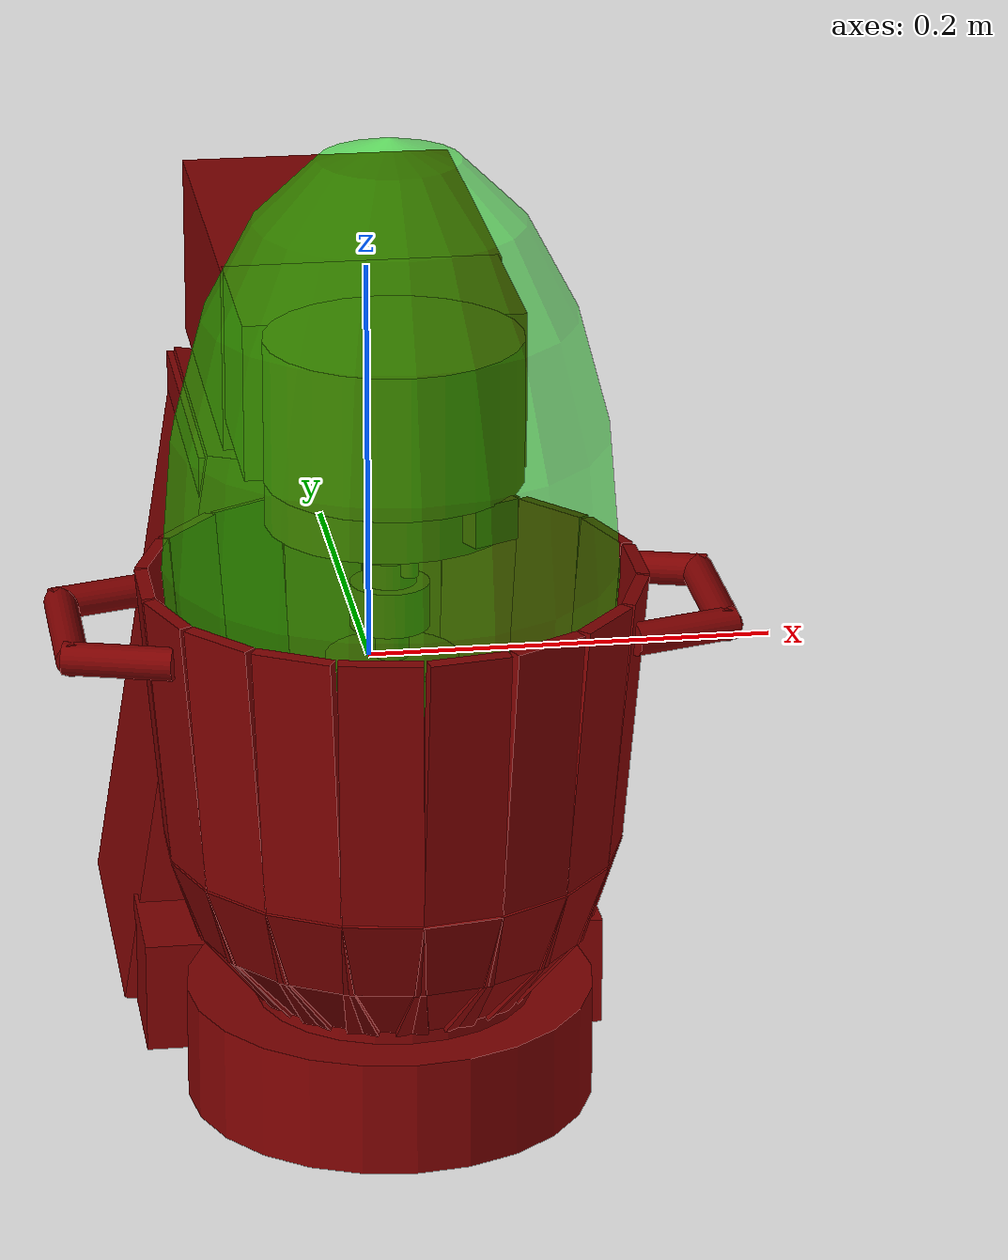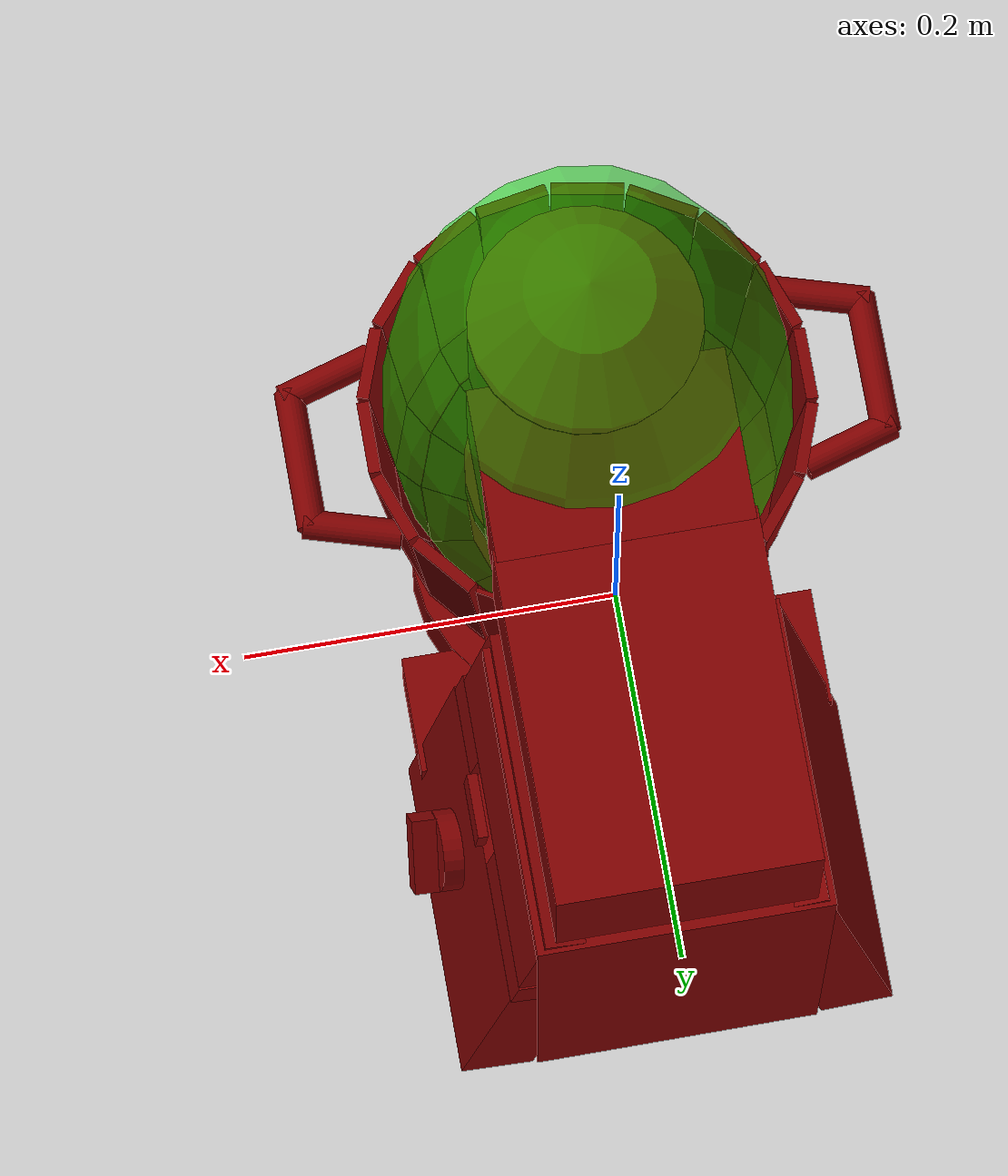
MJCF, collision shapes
<?xml version='1.0' encoding='UTF-8'?>
<mujoco model="model">
  <option timestep="0.002" gravity="0.0 0.0 -9.81"/>
  <compiler angle="radian"/>
  <asset>
    <mesh file="visuals/blender.obj" name="blender_vis"/>
    <mesh file="visuals/bowl.obj" name="bowl_vis"/>
    <mesh file="visuals/button_head_lock.obj" name="button_head_lock_vis"/>
    <mesh file="visuals/head.obj" name="head_vis"/>
    <mesh file="visuals/knob_speed.obj" name="knob_speed_vis"/>
    <mesh file="visuals/Body001.obj" name="Body001_vis"/>
    <texture file="visuals/T_BC001.png" name="Body001_material" type="2d"/>
    <material name="Body001_material" rgba="1 1 1 1.0" texture="Body001_material" shininess="0.4472135901451111" specular="0.3103448502657381"/>
    <texture file="visuals/T_BC001.png" name="bowl_material" type="2d"/>
    <material name="bowl_material" rgba="1 1 1 1.0" texture="bowl_material" shininess="1" specular="1"/>
    <texture file="visuals/T_BC001.png" name="button_head_lock_material" type="2d"/>
    <material name="button_head_lock_material" rgba="1 1 1 1.0" texture="button_head_lock_material" shininess="0.4472135901451111" specular="0.3103448502657381"/>
    <texture file="visuals/T_BC001.png" name="head_material" type="2d"/>
    <material name="head_material" rgba="1 1 1 1.0" texture="head_material" shininess="0.4472135901451111" specular="0.3103448502657381"/>
    <texture file="visuals/T_BC001.png" name="blender_material" type="2d"/>
    <material name="blender_material" rgba="1 1 1 1.0" texture="blender_material" shininess="1" specular="1"/>
    <texture file="visuals/T_BC001.png" name="knob_speed_material" type="2d"/>
    <material name="knob_speed_material" rgba="1 1 1 1.0" texture="knob_speed_material" shininess="0.4472135901451111" specular="0.3103448502657381"/>
  </asset>
  <default>
    <default class="visual">
      <geom conaffinity="0" contype="0" group="1" type="mesh"/>
    </default>
    <default class="collision">
      <geom group="0" rgba="0.5 0 0 0.5"/>
    </default>
    <default class="spawn">
      <geom group="0" rgba="1 1 1 0.5" contype="0" conaffinity="0"/>
      <site group="0" rgba="1 1 1 0.5"/>
    </default>
    <default class="region">
      <geom group="1" conaffinity="0" contype="0" rgba="0 1 0 0"/>
    </default>
  </default>
  <worldbody>
    <body>
      <body name="object">
        <geom mesh="Body001_vis" type="mesh" solimp="0.998 0.998 0.001" solref="0.001 1" friction="0.95 0.3 0.1" class="visual" material="Body001_material"/>
        <geom type="cylinder" pos="0.00027942 -0.07110865 -0.16947722" size="0.09948913007974625 0.028475960716605186" quat="1.0 0.0 0.0 0.0" class="collision"/>
        <geom type="box" pos="-0.00016450 0.12255467 -0.05183049" size="0.07822929322719574 0.08266868442296982 0.14408065378665924" quat="1.0 0.0 0.0 0.0" class="collision"/>
        <geom type="box" pos="0.08635793 0.11602900 -0.11276716" size="0.020114468410611153 0.08672500401735306 0.08789878338575363" quat="0.9968636631965637 1.441604230568549e-15 -0.07913806289434433 -1.0632899005713625e-08" class="collision"/>
        <geom type="box" pos="-0.07812745 0.11842228 -0.05266820" size="0.020114470273256302 0.08433172106742859 0.14652575552463531" quat="7.542601565546647e-08 -0.0800071582198143 -8.16010903292863e-09 -0.9967942833900452" class="collision"/>
        <geom type="box" pos="0.06070444 0.11842228 0.04778686" size="0.020114466547966003 0.08433172106742859 0.04524441808462143" quat="0.9968636631965637 1.441604230568549e-15 -0.07913806289434433 -1.0632899005713625e-08" class="collision"/>
        <geom type="box" pos="0.07013451 0.05489046 -0.01123190" size="0.020114464685320854 0.023769715800881386 0.01468779519200325" quat="0.9968636631965637 1.441604230568549e-15 -0.07913806289434433 -1.0632899005713625e-08" class="collision"/>
        <geom type="box" pos="0.07013451 0.16616337 -0.01123190" size="0.020114462822675705 0.0377182811498642 0.01468779519200325" quat="0.9968636631965637 1.441604230568549e-15 -0.07913806289434433 -1.0632899005713625e-08" class="collision"/>
        <geom type="box" pos="-0.00016450 0.01224635 -0.16963255" size="0.11466769874095917 0.03241998329758644 0.027998628094792366" quat="1.0 0.0 0.0 0.0" class="collision"/>
        <body name="bowl">
          <geom mesh="bowl_vis" type="mesh" solimp="0.998 0.998 0.001" solref="0.001 1" friction="0.95 0.3 0.1" class="visual" material="bowl_material"/>
          <geom type="cylinder" pos="-0.00000045 -0.08703315 -0.13085241" size="0.06761543452739716 0.00645955977961421" quat="1.0 0.0 0.0 0.0" class="collision"/>
          <geom type="box" pos="-0.07712256 -0.08703314 -0.11420020" size="0.0032251698430627584 0.019415058195590973 0.021723683923482895" quat="0.9398634433746338 -8.508053778914868e-15 -0.34155043959617615 -4.5890331534792494e-08" class="collision"/>
          <geom type="box" pos="-0.09859959 -0.08703316 -0.07742888" size="0.0032251698430627584 0.019415058195590973 0.021723680198192596" quat="0.9866737723350525 -8.209431466327417e-15 -0.16271087527275085 -2.1861641386067276e-08" class="collision"/>
          <geom type="box" pos="-0.11093804 -0.08703318 0.01010635" size="0.003225170075893402 0.01941506192088127 0.06696467846632004" quat="0.999093234539032 -5.8748782206206884e-15 -0.04257553070783615 -5.720397044939318e-09" class="collision"/>
          <geom type="box" pos="-0.07247153 -0.06065583 -0.11420020" size="0.003225170075893402 0.019415060058236122 0.021723685786128044" quat="0.9255847930908203 -0.05930963158607483 -0.3363615572452545 -0.16320565342903137" class="collision"/>
          <geom type="box" pos="-0.09265335 -0.05331027 -0.07742888" size="0.0032251698430627584 0.019415058195590973 0.021723680198192596" quat="0.9716839790344238 -0.028254449367523193 -0.16023890674114227 -0.1713341623544693" class="collision"/>
          <geom type="box" pos="-0.10424770 -0.04909028 0.01010635" size="0.003225170075893402 0.01941506192088127 0.06696467846632004" quat="0.9839147925376892 -0.007393162697553635 -0.041928716003894806 -0.1734907180070877" class="collision"/>
          <geom type="box" pos="-0.05907941 -0.03746001 -0.11420020" size="0.003225170075893402 0.019415058195590973 0.021723685786128044" quat="0.8831827640533447 -0.11681710928678513 -0.3209524154663086 -0.32145223021507263" class="collision"/>
          <geom type="box" pos="-0.07553179 -0.02365485 -0.07742887" size="0.003225169610232115 0.019415058195590973 0.021723682060837746" quat="0.9271700978279114 -0.055650386959314346 -0.1528981775045395 -0.3374623656272888" class="collision"/>
          <geom type="box" pos="-0.08498359 -0.01572386 0.01010635" size="0.0032251698430627584 0.01941506192088127 0.06696467846632004" quat="0.9388405680656433 -0.014561688527464867 -0.04000791534781456 -0.34171000123023987" class="collision"/>
          <geom type="box" pos="-0.03856151 -0.02024344 -0.11420020" size="0.0032251698430627584 0.019415058195590973 0.021723685786128044" quat="0.8139456510543823 -0.17077518999576569 -0.295791357755661 -0.4699317216873169" class="collision"/>
          <geom type="box" pos="-0.04930004 -0.00164379 -0.07742887" size="0.0032251698430627584 0.019415058195590973 0.021723682060837746" quat="0.854484498500824 -0.08135543018579483 -0.14091171324253082 -0.4933370053768158" class="collision"/>
          <geom type="box" pos="-0.05546928 0.00904160 0.01010635" size="0.0014450793387368321 0.019415060058236122 0.06696467846632004" quat="0.8652401566505432 -0.021287759765982628 -0.03687148541212082 -0.4995465874671936" class="collision"/>
          <geom type="box" pos="-0.01339256 -0.01108270 -0.11420020" size="0.0032251698430627584 0.019415056332945824 0.021723685786128044" quat="0.7199771404266357 -0.21954436600208282 -0.26164281368255615 -0.6041325926780701" class="collision"/>
          <geom type="box" pos="-0.01712204 0.01006806 -0.07742887" size="0.0010216488735750318 0.019415056332945824 0.021723680198192596" quat="0.755836009979248 -0.10458849370479584 -0.1246437281370163 -0.6342216730117798" class="collision"/>
          <geom type="box" pos="-0.01926459 0.02221904 0.01010635" size="0.001235942472703755 0.01941506378352642 0.06696468591690063" quat="0.7653498649597168 -0.02736702188849449 -0.03261474519968033 -0.642204761505127" class="collision"/>
          <geom type="box" pos="0.01339166 -0.01108270 -0.11420020" size="0.0032251698430627584 0.019415056332945824 0.021723685786128044" quat="0.6041325330734253 -0.26164278388023376 -0.21954438090324402 -0.7199772000312805" class="collision"/>
          <geom type="box" pos="0.01712109 0.01006807 -0.07742888" size="0.0010742828017100692 0.019415060058236122 0.021723680198192596" quat="0.6342216730117798 -0.1246437281370163 -0.10458851605653763 -0.755836009979248" class="collision"/>
          <geom type="box" pos="0.01926362 0.02221905 0.01010635" size="0.0010936082107946277 0.019415060058236122 0.06696467846632004" quat="0.6422048211097717 -0.03261474892497063 -0.02736702561378479 -0.765349805355072" class="collision"/>
          <geom type="box" pos="0.03856060 -0.02024344 -0.11420020" size="0.0032251698430627584 0.019415058195590973 0.021723685786128044" quat="0.4699317216873169 -0.2957913279533386 -0.17077521979808807 -0.8139456510543823" class="collision"/>
          <geom type="box" pos="0.04929911 -0.00164378 -0.07742887" size="0.003225170075893402 0.019415060058236122 0.021723680198192596" quat="0.49333688616752625 -0.14091169834136963 -0.08135540038347244 -0.8544846177101135" class="collision"/>
          <geom type="box" pos="0.05546832 0.00904163 0.01010635" size="0.0012282873503863811 0.019415060058236122 0.06696467846632004" quat="0.4995465874671936 -0.03687148541212082 -0.021287761628627777 -0.8652401566505432" class="collision"/>
          <geom type="box" pos="0.05907850 -0.03746001 -0.11420020" size="0.003225170075893402 0.019415058195590973 0.021723685786128044" quat="0.321452260017395 -0.3209523856639862 -0.11681714653968811 -0.8831827640533447" class="collision"/>
          <geom type="box" pos="0.07553086 -0.02365482 -0.07742887" size="0.0032251698430627584 0.019415058195590973 0.021723682060837746" quat="0.33746230602264404 -0.1528981775045395 -0.055650390684604645 -0.9271700978279114" class="collision"/>
          <geom type="box" pos="0.08498263 -0.01572380 0.01010635" size="0.0032251698430627584 0.01941506192088127 0.06696467846632004" quat="0.3417101204395294 -0.040007904171943665 -0.01456169318407774 -0.9388405084609985" class="collision"/>
          <geom type="box" pos="0.07247062 -0.06065584 -0.11420020" size="0.003225170075893402 0.019415058195590973 0.021723685786128044" quat="0.16320551931858063 -0.33636146783828735 -0.05930960178375244 -0.9255848526954651" class="collision"/>
          <geom type="box" pos="0.09265242 -0.05331023 -0.07742887" size="0.0032251698430627584 0.019415058195590973 0.021723680198192596" quat="0.1713341474533081 -0.1602388471364975 -0.028254443779587746 -0.9716839790344238" class="collision"/>
          <geom type="box" pos="0.10424677 -0.04909022 0.01010635" size="0.0032251698430627584 0.01941506192088127 0.06696467846632004" quat="0.1734907627105713 -0.04192870855331421 -0.007393165025860071 -0.9839147925376892" class="collision"/>
          <geom type="box" pos="0.07712165 -0.08703313 -0.11420020" size="0.0032251698430627584 0.019415058195590973 0.021723685786128044" quat="7.794024980967151e-08 -0.3415503203868866 -4.5000561499364267e-08 -0.9398635029792786" class="collision"/>
          <geom type="box" pos="0.09859868 -0.08703314 -0.07742888" size="0.0032251698430627584 0.019415058195590973 0.021723680198192596" quat="7.388065625946183e-08 0.16271083056926727 -8.57837978429643e-09 0.9866737723350525" class="collision"/>
          <geom type="box" pos="0.11093713 -0.08703310 0.01010635" size="0.003225170075893402 0.01941506192088127 0.06696467846632004" quat="7.543984992253172e-08 -0.04257553070783615 -3.4585707631151763e-09 -0.999093234539032" class="collision"/>
          <geom type="box" pos="0.07247061 -0.11341047 -0.11420020" size="0.0032251698430627584 0.019415058195590973 0.021723685786128044" quat="0.16320571303367615 0.33636149764060974 -0.059309642761945724 0.9255847930908203" class="collision"/>
          <geom type="box" pos="0.09265243 -0.12075605 -0.07742887" size="0.0032251698430627584 0.019415058195590973 0.021723680198192596" quat="0.17133426666259766 0.1602388620376587 -0.02825445681810379 0.9716839790344238" class="collision"/>
          <geom type="box" pos="0.10424677 -0.12497604 0.01010635" size="0.0032251698430627584 0.01941506192088127 0.06696467846632004" quat="0.1734907627105713 0.041928697377443314 -0.007393163163214922 0.9839147925376892" class="collision"/>
          <geom type="box" pos="0.05907850 -0.13660629 -0.11420020" size="0.0032251698430627584 0.019415058195590973 0.021723683923482895" quat="0.3214523196220398 0.320952445268631 -0.11681713908910751 0.8831827044487" class="collision"/>
          <geom type="box" pos="0.07553088 -0.15041146 -0.07742888" size="0.0032251698430627584 0.019415058195590973 0.021723680198192596" quat="0.3374624252319336 0.1528981775045395 -0.05565040186047554 0.9271700382232666" class="collision"/>
          <geom type="box" pos="0.08498269 -0.15834242 0.01010636" size="0.0032251698430627584 0.01941506192088127 0.06696467846632004" quat="0.34171003103256226 0.040007904171943665 -0.014561685733497143 0.9388405680656433" class="collision"/>
          <geom type="box" pos="0.03856059 -0.15382284 -0.11420020" size="0.003225170075893402 0.019415058195590973 0.021723685786128044" quat="0.46993178129196167 0.2957913279533386 -0.17077521979808807 0.8139455914497375" class="collision"/>
          <geom type="box" pos="0.04929913 -0.17242250 -0.07742887" size="0.0032251698430627584 0.019415058195590973 0.021723680198192596" quat="0.4933369755744934 0.14091169834136963 -0.08135542273521423 0.8544845581054688" class="collision"/>
          <geom type="box" pos="0.05546835 -0.18310791 0.01010635" size="0.0032251698430627584 0.01941506192088127 0.06696467846632004" quat="0.49954670667648315 0.036871492862701416 -0.021287767216563225 0.8652400970458984" class="collision"/>
          <geom type="box" pos="0.01339166 -0.16298360 -0.11420020" size="0.0032251698430627584 0.019415060058236122 0.021723685786128044" quat="0.6041325926780701 0.26164281368255615 -0.21954436600208282 0.7199771404266357" class="collision"/>
          <geom type="box" pos="0.01712112 -0.18413435 -0.07742887" size="0.0032251698430627584 0.019415060058236122 0.021723682060837746" quat="0.6342217326164246 0.1246437206864357 -0.10458850115537643 0.7558359503746033" class="collision"/>
          <geom type="box" pos="0.01926368 -0.19628534 0.01010635" size="0.0032251698430627584 0.01941506192088127 0.06696467846632004" quat="0.6422046422958374 0.03261474892497063 -0.027367020025849342 0.7653499245643616" class="collision"/>
          <geom type="box" pos="-0.01339260 -0.16298360 -0.11420020" size="0.0032251698430627584 0.019415058195590973 0.021723683923482895" quat="0.7199772596359253 0.21954435110092163 -0.26164284348487854 0.6041324138641357" class="collision"/>
          <geom type="box" pos="-0.01712204 -0.18413434 -0.07742887" size="0.0032251698430627584 0.019415058195590973 0.021723680198192596" quat="0.7558361291885376 0.10458846390247345 -0.1246437355875969 0.6342215538024902" class="collision"/>
          <geom type="box" pos="-0.01926458 -0.19628534 0.01010635" size="0.003225170075893402 0.01941506192088127 0.06696467846632004" quat="0.7653499841690063 0.027367012575268745 -0.032614752650260925 0.6422045826911926" class="collision"/>
          <geom type="box" pos="-0.03856153 -0.15382284 -0.11420020" size="0.0032251698430627584 0.019415060058236122 0.021723683923482895" quat="0.8139456510543823 0.17077523469924927 -0.295791357755661 0.4699316918849945" class="collision"/>
          <geom type="box" pos="-0.04930004 -0.17242250 -0.07742888" size="0.0032251698430627584 0.019415058195590973 0.021723682060837746" quat="0.8544846773147583 0.08135540038347244 -0.14091172814369202 0.4933367669582367" class="collision"/>
          <geom type="box" pos="-0.05546921 -0.18310794 0.01010636" size="0.0032251698430627584 0.01941506378352642 0.06696467846632004" quat="0.8652400970458984 0.021287759765982628 -0.03687147796154022 0.49954667687416077" class="collision"/>
          <geom type="box" pos="-0.05907942 -0.13660628 -0.11420020" size="0.0032251698430627584 0.019415058195590973 0.021723685786128044" quat="0.8831827640533447 0.11681711673736572 -0.3209524154663086 0.32145217061042786" class="collision"/>
          <geom type="box" pos="-0.07553177 -0.15041146 -0.07742888" size="0.0032251698430627584 0.019415058195590973 0.021723682060837746" quat="0.9271700978279114 0.05565038323402405 -0.1528981775045395 0.33746227622032166" class="collision"/>
          <geom type="box" pos="-0.08498356 -0.15834248 0.01010635" size="0.0032251698430627584 0.01941506192088127 0.06696467846632004" quat="0.9388405680656433 0.014561689458787441 -0.04000791534781456 0.34171000123023987" class="collision"/>
          <geom type="box" pos="-0.07247153 -0.11341045 -0.11420020" size="0.003225170075893402 0.019415058195590973 0.021723685786128044" quat="0.9255848526954651 0.05930960923433304 -0.33636149764060974 0.16320551931858063" class="collision"/>
          <geom type="box" pos="-0.09265333 -0.12075605 -0.07742888" size="0.0032251698430627584 0.019415058195590973 0.021723682060837746" quat="0.9716840386390686 0.028254440054297447 -0.16023889183998108 0.17133407294750214" class="collision"/>
          <geom type="box" pos="-0.10424768 -0.12497605 0.01010635" size="0.003225170075893402 0.019415060058236122 0.06696467846632004" quat="0.9839147925376892 0.007393162697553635 -0.041928719729185104 0.17349068820476532" class="collision"/>
          <geom type="cylinder" pos="-0.15364719 -0.08703324 0.05531123" size="0.007913979701697826 0.03792359679937363" quat="0.7071068286895752 0.7071067690849304 -1.5700924318127872e-16 -5.9269340452702814e-24" class="collision"/>
          <geom type="cylinder" pos="-0.13280829 -0.04484287 0.05531123" size="0.007913979701697826 0.026010042056441307" quat="0.5668542981147766 0.5668542385101318 -0.4227010905742645 -0.4227011203765869" class="collision"/>
          <geom type="cylinder" pos="-0.13280829 -0.12847191 0.05531123" size="0.007913979701697826 0.026010042056441307" quat="0.5668541193008423 -0.5668542981147766 -0.4227011799812317 0.4227012097835541" class="collision"/>
          <geom type="cylinder" pos="0.15350377 -0.08703324 0.05531123" size="0.007913979701697826 0.03792359679937363" quat="5.338507946817117e-08 5.338507591545749e-08 0.70710688829422 -0.7071066498756409" class="collision"/>
          <geom type="cylinder" pos="0.13266487 -0.04484287 0.05531124" size="0.007913979701697826 0.026010042056441307" quat="0.4227011799812317 -0.42270103096961975 0.5668543577194214 -0.5668541789054871" class="collision"/>
          <geom type="cylinder" pos="0.13266487 -0.12847191 0.05531122" size="0.007913979701697826 0.026010043919086456" quat="0.422700971364975 0.4227011501789093 0.5668541789054871 0.5668544173240662" class="collision"/>
          <geom name="reg_bowl" type="ellipsoid" pos="-0.00000045 -0.08703315 0.08351655" size="0.10863548517227173 0.11070560663938522 0.2050044983625412" rgba="0 1 0 0.5" class="region"/>
        </body>
        <body name="button_head_lock">
          <joint axis="-0.9961947202682495 3.469446951953614e-18 -0.08715573698282242" pos="0.09294300 0.10165443 -0.00578906" limited="true" name="button_head_lock_joint" range="0.0 0.0025" type="slide" damping="1" frictionloss="1" armature=".01" stiffness="0.2" springref="-0.2"/>
          <geom mesh="button_head_lock_vis" type="mesh" solimp="0.998 0.998 0.001" solref="0.001 1" friction="0.95 0.3 0.1" class="visual" material="button_head_lock_material"/>
          <geom class="collision" type="box" pos="0.09291273 0.10171860 -0.00581935" size="0.0027752812020480633 0.01744823530316353 0.009837870486080647" quat="0.9989606738090515 -2.028264729081255e-17 -0.04558068886399269 -6.124170059962353e-09" name="button_head_lock_main"/>
        </body>
        <body name="head">
          <joint axis="-1.0 0.0 0.0" pos="0.00122371 0.19950631 0.10471417" limited="true" name="head_joint" range="0.0 1.5707963267948966" type="hinge" damping="1" frictionloss="1" armature=".01" stiffness="0.05"/>
          <geom mesh="head_vis" type="mesh" solimp="0.998 0.998 0.001" solref="0.001 1" friction="0.95 0.3 0.1" class="visual" material="head_material"/>
          <geom type="box" pos="-0.00016450 0.10918501 0.14985520" size="0.06832793354988098 0.0933474451303482 0.04548487439751625" quat="1.0 0.0 0.0 0.0" class="collision"/>
          <geom type="cylinder" pos="0.00027942 -0.09593441 0.16163681" size="0.061115968972444534 0.03446575999259949" quat="1.0 0.0 0.0 0.0" class="collision"/>
          <geom type="box" pos="-0.00016450 -0.02351485 0.15726659" size="0.06704231351613998 0.046033162623643875 0.03814181685447693" quat="1.0 0.0 0.0 0.0" class="collision"/>
          <geom type="cylinder" pos="0.00027942 -0.08031075 0.11476582" size="0.05938369408249855 0.014339971356093884" quat="1.0 0.0 0.0 0.0" class="collision"/>
          <geom type="cylinder" pos="0.00027942 -0.07852016 0.09302295" size="0.02423105388879776 0.007446815259754658" quat="1.0 0.0 0.0 0.0" class="collision"/>
          <geom type="cylinder" pos="0.00027942 -0.07852016 0.07588445" size="0.012680538929998875 0.010188119485974312" quat="1.0 0.0 0.0 0.0" class="collision"/>
          <geom type="cylinder" pos="0.00027942 -0.07852016 0.05772276" size="0.01911505125463009 0.010965453460812569" quat="1.0 0.0 0.0 0.0" class="collision"/>
          <geom type="cylinder" pos="0.00546052 -0.11004376 0.09253208" size="0.0041057956404984 0.009389047510921955" quat="1.0 0.0 0.0 0.0" class="collision"/>
          <geom type="box" pos="0.03945882 -0.13615954 0.11827743" size="0.011981591582298279 0.0051320986822247505 0.009860829450190067" quat="0.9734593033790588 0.0 0.0 0.22886018455028534" class="collision"/>
          <body name="blender">
            <joint axis="0.0 0.0 1.0" pos="0.00092081 -0.07873129 0.04693572" limited="false" name="blender_joint" range="0 360" type="hinge" damping="1" frictionloss="1" armature=".01" stiffness="0.05"/>
            <geom mesh="blender_vis" type="mesh" solimp="0.998 0.998 0.001" solref="0.001 1" friction="0.95 0.3 0.1" class="visual" material="blender_material"/>
            <geom type="cylinder" pos="0.00092024 -0.07967690 0.01940950" size="0.01275637000799179 0.009540108032524586" quat="1.0 0.0 0.0 0.0" class="collision"/>
            <geom type="cylinder" pos="0.00092024 -0.07967690 0.03733047" size="0.008043072186410427 0.006015172693878412" quat="1.0 0.0 0.0 0.0" class="collision"/>
            <geom type="cylinder" pos="0.00092024 -0.07967690 0.03007157" size="0.032046131789684296 0.0013896971940994263" quat="1.0 0.0 0.0 0.0" class="collision"/>
            <geom type="cylinder" pos="0.00092024 -0.07967690 0.00283702" size="0.02764466404914856 0.007633859757333994" quat="1.0 0.0 0.0 0.0" class="collision"/>
            <geom type="cylinder" pos="0.00092024 -0.07967690 -0.02869021" size="0.06642773747444153 0.010030824691057205" quat="1.0 0.0 0.0 0.0" class="collision"/>
            <geom type="cylinder" pos="0.00092024 -0.07967690 -0.05135041" size="0.05663139745593071 0.01261413749307394" quat="1.0 0.0 0.0 0.0" class="collision"/>
            <geom type="cylinder" pos="0.00092024 -0.07967690 -0.01095614" size="0.049226682633161545 0.009186345152556896" quat="1.0 0.0 0.0 0.0" class="collision"/>
            <geom type="cylinder" pos="0.00092024 -0.07967690 -0.07506882" size="0.0421801395714283 0.011587971821427345" quat="1.0 0.0 0.0 0.0" class="collision"/>
            <geom type="cylinder" pos="0.00092024 -0.07967690 -0.09483416" size="0.02220497839152813 0.010555355809628963" quat="1.0 0.0 0.0 0.0" class="collision"/>
          </body>
        </body>
        <body name="knob_speed">
          <joint axis="-0.9848079085350037 0.0 -0.17364822328090668" pos="0.11709263 0.10339490 -0.08071058" limited="true" name="knob_speed_joint" range="0.0 4.886921905584122" type="hinge" damping="0.05" armature="0.001"/>
          <geom mesh="knob_speed_vis" type="mesh" solimp="0.998 0.998 0.001" solref="0.001 1" friction="0.95 0.3 0.1" class="visual" material="knob_speed_material"/>
          <geom type="cylinder" pos="0.11081879 0.10339490 -0.08181683" size="0.02205764874815941 0.0055626011453568935" quat="0.7660444378852844 -6.694248427070379e-14 0.6427876353263855 8.636425974373196e-08" class="collision"/>
          <geom class="collision" type="box" pos="0.12262128 0.10339490 -0.07973573" size="0.006981216371059418 0.021166592836380005 0.006543145980685949" quat="0.949923574924469 -0.3000817894935608 -0.08310753852128983 -0.02625376358628273" name="knob_speed_main"/>
        </body>
        <geom class="region" name="reg_main" type="box" pos="0.0004048999999999997 0.017564100000000013 8.700000000000374e-05" size="0.12172292 0.18823041000000001 0.19672893"/>
      </body>
    </body>
  </worldbody>
  <actuator>
    <motor name="button_head_lock_joint_actuator" joint="button_head_lock_joint" gear="0.5"/>
    <motor name="head_joint_actuator" joint="head_joint" gear="0.5"/>
    <motor name="knob_speed_joint_actuator" joint="knob_speed_joint" gear="0.5"/>
    <motor name="blender_joint_actuator" joint="blender_joint" gear="0.5"/>
  </actuator>
</mujoco>
